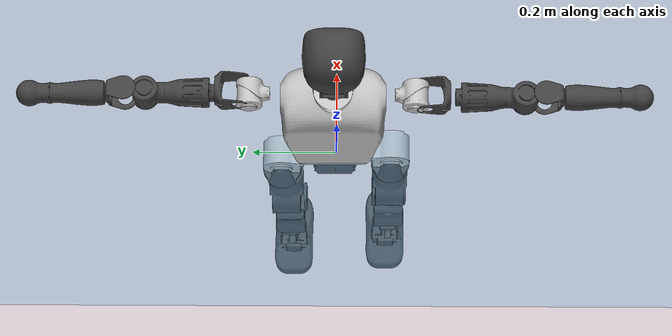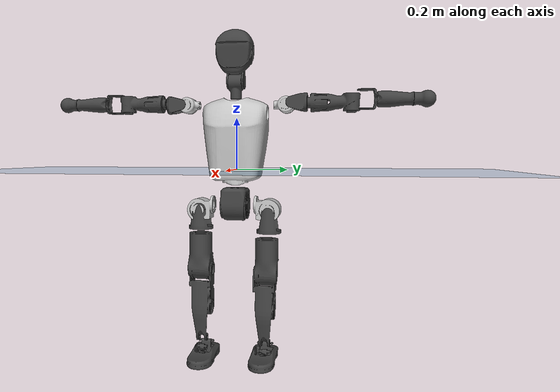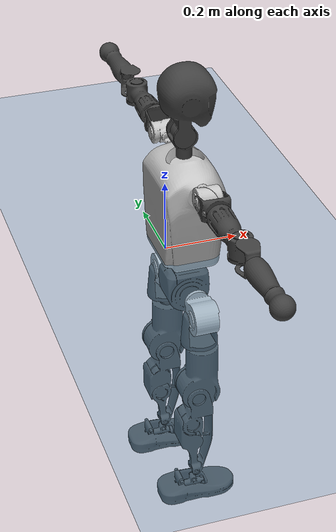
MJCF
<mujoco model="T1">
  <compiler angle="radian" assetdir="assets" balanceinertia="true" inertiafromgeom="false"/>

  <option timestep="0.005" density="1.2" viscosity="2e-05"/>

  <size nkey="1"/>

  <visual>
    <quality shadowsize="8192"/>
    <map shadowclip="0.5"/>
  </visual>

  <default>
    <default class="/">
      <joint armature="0.01" damping="0.01" frictionloss="0.1"/>
      <geom contype="0" conaffinity="0" group="1" solref="-1000 -80"/>
      <site size="0.01 0.005 0.005" group="5"/>
      <general forcelimited="true" biastype="affine" gainprm="25" biasprm="0 -25 -0.6"/>
      <default class="t1">
        <geom rgba="0.25 0.25 0.25 1"/>
        <default class="visual">
          <geom type="mesh" group="2"/>
        </default>
        <default class="collision">
          <geom group="3"/>
        </default>
        <default class="foot">
          <geom size="0.1115 0.05 0.015" type="box" condim="6" group="4" priority="1" solimp="0.015 1 0.015"/>
        </default>
        <default class="reward_collision_sphere">
          <geom group="5" rgba="1 0 0 1"/>
        </default>
      </default>
    </default>
  </default>

  <asset>
    <texture type="skybox" colorspace="auto" name="//unnamed_texture_0" builtin="gradient" rgb1="0.95 0.95 0.95" rgb2="0.95 0.95 0.95" width="100" height="600"/>
    <texture type="2d" colorspace="auto" name="texplane" builtin="checker" rgb1="0.345 0.575 0.748" rgb2="0.345 0.575 0.748" markrgb="1 1 1" width="512" height="512"/>
    <material name="MatPlane" class="/" texture="texplane" texuniform="true" texrepeat="2 2" specular="0.9"/>
    <mesh name="Trunk" class="/" file="Trunk.stl"/>
    <mesh name="H1" class="/" file="H1.stl"/>
    <mesh name="H2" class="/" file="H2.stl"/>
    <mesh name="AL1" class="/" file="AL1.stl"/>
    <mesh name="AL2" class="/" file="AL2.stl"/>
    <mesh name="AL3" class="/" file="AL3.stl"/>
    <mesh name="left_hand_link" class="/" file="left_hand_link.stl"/>
    <mesh name="AR1" class="/" file="AR1.stl"/>
    <mesh name="AR2" class="/" file="AR2.stl"/>
    <mesh name="AR3" class="/" file="AR3.stl"/>
    <mesh name="right_hand_link" class="/" file="right_hand_link.stl"/>
    <mesh name="Waist" class="/" file="Waist.stl"/>
    <mesh name="Hip_Pitch_Left" class="/" file="Hip_Pitch_Left.stl"/>
    <mesh name="Hip_Roll_Left" class="/" file="Hip_Roll_Left.stl"/>
    <mesh name="Hip_Yaw_Left" class="/" file="Hip_Yaw_Left.stl"/>
    <mesh name="Shank_Left" class="/" file="Shank_Left.stl"/>
    <mesh name="Ankle_Cross_Left" class="/" file="Ankle_Cross_Left.stl"/>
    <mesh name="left_foot_link" class="/" file="left_foot_link.stl"/>
    <mesh name="Hip_Pitch_Right" class="/" file="Hip_Pitch_Right.stl"/>
    <mesh name="Hip_Roll_Right" class="/" file="Hip_Roll_Right.stl"/>
    <mesh name="Hip_Yaw_Right" class="/" file="Hip_Yaw_Right.stl"/>
    <mesh name="Shank_Right" class="/" file="Shank_Right.stl"/>
    <mesh name="Ankle_Cross_Right" class="/" file="Ankle_Cross_Right.stl"/>
    <mesh name="right_foot_link" class="/" file="right_foot_link.stl"/>
  </asset>

  <worldbody>
    <geom name="floor" class="/" size="100 100 0.125" type="plane" group="0" material="MatPlane"/>
    <light name="toplight_shadow" class="/" pos="0 0 5" dir="0.0990148 0.0990148 -0.990148" type="directional" ambient="0.04 0.04 0.04" diffuse="0.55 0.55 0.55" specular="0.12 0.12 0.12"/>
    <light name="toplight_fill" class="/" pos="0 0 5" dir="0.0990148 0.0990148 -0.990148" type="directional" castshadow="false" ambient="0.04 0.04 0.04" diffuse="0.3 0.3 0.3" specular="0.08 0.08 0.08"/>
    <body name="trunk" childclass="t1" pos="0.00299808 0.0074863 -0.0043707" quat="0.999997 -0.00232424 -0.000136233 0.000719755">
      <inertial pos="0.0479004 0.00137808 0.116491" quat="0.999954 0.000771617 -0.00958483 0.000138236" mass="17.323" diaginertia="0.0468289 0.261021 0.104831"/>
      <joint name="//unnamed_joint_0" type="free" armature="0" damping="0" frictionloss="0"/>
      <geom name="//unnamed_geom_1" class="visual" rgba="0.76 0.76 0.76 1" mesh="Trunk"/>
      <geom name="//unnamed_geom_2" class="collision" size="0.0836916 0.111589 0.167383" pos="0.0531517 0 0.136785" type="box"/>
      <geom name="//unnamed_geom_3" class="reward_collision_sphere" size="0.128327" pos="0.0531517 0 0.113987"/>
      <geom name="//unnamed_geom_4" class="reward_collision_sphere" size="0.0167383" pos="0.0531517 0.112364 0"/>
      <geom name="//unnamed_geom_5" class="reward_collision_sphere" size="0.0167383" pos="0.0531517 -0.112364 0"/>
      <geom name="//unnamed_geom_6" class="reward_collision_sphere" size="0.0167383" pos="0.0531517 0.141446 0.205177"/>
      <geom name="//unnamed_geom_7" class="reward_collision_sphere" size="0.0167383" pos="0.0531517 -0.141446 0.205177"/>
      <site name="imu" pos="0.0272639 0.0446855 0.00862927" size="0.0111589"/>
      <camera name="track" pos="0 -2.64386 0" quat="0.707107 0.707107 0 0" mode="trackcom"/>
      <camera name="ego_camera" pos="0.108075 0 0.478747" quat="-0.5 -0.5 0.5 0.5"/>
      <body name="H1" pos="0.0518357 -0.00167538 0.274385" quat="0.999998 -0.000317878 0.00209105 0.000291508">
        <inertial pos="-0.00489981 -0.00112887 0.0604047" quat="0.772347 -0.0673288 0.00169956 0.631621" mass="0.601175" diaginertia="0.000131251 0.000826702 0.000304128"/>
        <joint name="AAHead_yaw" pos="0 0 0" axis="-0.00719966 -0.0444107 0.998987" range="-1.45702 1.58329" armature="0.00833343" damping="0.00186394" frictionloss="0.146543"/>
        <geom name="//unnamed_geom_8" class="visual" mesh="H1"/>
        <body name="H2" pos="-0.00836231 -0.000830171 0.0687582" quat="1 0.00012449 0.000492883 0.000352836">
          <inertial pos="0.00712239 0.0117293 0.111149" quat="0.988456 0.106798 -0.0743006 -0.0776476" mass="0.95315" diaginertia="0.00123419 0.00965529 0.00353615"/>
          <joint name="Head_pitch" pos="0 0 0" axis="-0.0282069 -0.999344 0.0227152" stiffness="0.0150205" range="-1.23096 0.271916" armature="0.0112393" damping="0.00443997" frictionloss="0.125918"/>
          <geom name="//unnamed_geom_9" class="visual" mesh="H2"/>
          <geom name="//unnamed_geom_10" class="collision" size="0.089271" pos="0.00885862 0 0.125386"/>
          <geom name="//unnamed_geom_11" class="reward_collision_sphere" size="0.10043" pos="0.0177172 0 0.113987"/>
        </body>
      </body>
      <body name="AL1" pos="0.0567872 0.145032 0.250131" quat="1 -0.000126338 0.000147144 0.000545805">
        <inertial pos="4.12325e-05 0.0578473 0.0102116" quat="0.462615 0.513635 -0.510221 0.511704" mass="0.629972" diaginertia="0.000620678 0.00437013 0.000477944"/>
        <joint name="Left_Shoulder_Pitch" pos="0 0 0" axis="-0.0419304 0.999108 -0.00503293" range="-3.29462 1.28193" armature="0.0117525" damping="0" frictionloss="0.115168"/>
        <geom name="//unnamed_geom_12" class="visual" rgba="0.76 0.76 0.76 1" mesh="AL1"/>
        <body name="AL2" pos="0.00402338 0.0690829 0.0079" quat="0.999982 -0.000808752 0.00273129 -0.00528926">
          <inertial pos="0.00752967 0.061548 0.000667011" quat="0.487834 0.511713 -0.487201 0.512643" mass="0.229203" diaginertia="0.000214709 0.00149837 0.000349043"/>
          <joint name="Left_Shoulder_Roll" pos="0 0 0" axis="-0.998282 -0.05819 -0.00690848" stiffness="0.0512044" range="-1.76093 1.77127" armature="0.0129569" damping="0.0620365" frictionloss="0.0610579"/>
          <geom name="//unnamed_geom_13" class="visual" mesh="AL2"/>
          <body name="AL3" pos="-0.00550258 0.068928 -0.00104839" quat="0.999988 0.000522495 0.000383518 0.00482478">
            <inertial pos="-0.000119605 0.120863 0.00195808" quat="0.709236 0.70459 -0.0181167 -0.0144521" mass="1.27364" diaginertia="0.00754745 0.0487063 0.0014274"/>
            <joint name="Left_Elbow_Pitch" pos="0 0 0" axis="-0.0102302 -0.999289 0.0362914" stiffness="0.0375372" range="-2.50022 2.47933" armature="0.0054255" damping="0.0528992" frictionloss="0.0730669"/>
            <geom name="//unnamed_geom_14" class="visual" mesh="AL3"/>
            <geom name="//unnamed_geom_15" class="collision" size="0.0334766 0.0836916" pos="0 0.0660964 0" quat="0.707105 0.707108 0 0" type="cylinder"/>
            <geom name="//unnamed_geom_16" class="reward_collision_sphere" size="0.040172"/>
            <body name="left_hand_link" pos="-0.00367441 0.193903 0.00997462" quat="0.999996 -0.00122651 -0.000976618 0.00251682">
              <inertial pos="-0.000100039 0.147035 0.00799611" quat="0.710092 0.704104 -0.0025241 6.75525e-05" mass="0.426164" diaginertia="0.00422014 0.0324663 0.00040842"/>
              <joint name="Left_Elbow_Yaw" pos="0 0 0" axis="0.0174299 -0.018823 0.999671" range="-2.45059 0.0397955" armature="0.0117853" damping="0.0206832" frictionloss="0.0843918"/>
              <geom name="//unnamed_geom_17" class="visual" mesh="left_hand_link"/>
              <geom name="//unnamed_geom_18" class="collision" size="0.0334766 0.0976402" pos="0 0.171851 0" quat="0.707105 0.707108 0 0" type="cylinder"/>
              <geom name="//unnamed_geom_19" class="reward_collision_sphere" size="0.0557944"/>
              <geom name="//unnamed_geom_20" class="reward_collision_sphere" size="0.0390561" pos="0 0.145412 0"/>
              <geom name="//unnamed_geom_21" class="reward_collision_sphere" size="0.0390561" pos="0 0.284214 0"/>
            </body>
          </body>
        </body>
      </body>
      <body name="AR1" pos="0.0521794 -0.142626 0.251571" quat="0.999998 0.00102034 0.000841174 -0.00134731">
        <inertial pos="0.00160223 -0.0503851 -0.00940706" quat="0.511183 0.491719 -0.504428 0.492399" mass="0.734839" diaginertia="0.000807908 0.00514772 0.000511644"/>
        <joint name="Right_Shoulder_Pitch" pos="0 0 0" axis="-0.000327704 -1 -0.000184424" range="-1.19539 3.30537" armature="0.0139222" damping="0.00276256" frictionloss="0.109246"/>
        <geom name="//unnamed_geom_22" class="visual" rgba="0.76 0.76 0.76 1" mesh="AR1"/>
        <body name="AR2" pos="-0.00115677 -0.0701873 0.00218292" quat="0.999999 -0.000717525 -0.000489558 -0.000535317">
          <inertial pos="0.00579004 -0.0498122 0.0101878" quat="0.510452 0.50435 -0.495638 0.489299" mass="0.207074" diaginertia="0.00023135 0.00154179 0.000369081"/>
          <joint name="Right_Shoulder_Roll" pos="0 0 0" axis="-0.999743 0.0173635 0.0145862" range="-1.70588 1.39468" armature="0.0116229" damping="0.0492444" frictionloss="0.114328"/>
          <geom name="//unnamed_geom_23" class="visual" mesh="AR2"/>
          <body name="AR3" pos="-0.00666885 -0.0804542 0.00537469" quat="1 -0.000185548 -7.05584e-05 -0.000618475">
            <inertial pos="-0.00232919 -0.108316 -0.000210673" quat="0.711506 0.702667 0.00118302 0.00407681" mass="1.40432" diaginertia="0.0067234 0.0462445 0.00109617"/>
            <joint name="Right_Elbow_Pitch" pos="0 0 0" axis="0.000868583 0.99993 0.0118241" stiffness="0.0264879" range="-2.2855 2.25694" armature="0.00578546" damping="0.00191988" frictionloss="0.163332"/>
            <geom name="//unnamed_geom_24" class="visual" mesh="AR3"/>
            <geom name="//unnamed_geom_25" class="collision" size="0.0334766 0.0836916" pos="0 -0.0660964 0" quat="0.707105 0.707108 0 0" type="cylinder"/>
            <geom name="//unnamed_geom_26" class="reward_collision_sphere" size="0.040172"/>
            <body name="right_hand_link" pos="0.000622681 -0.192593 0.000616972" quat="0.999997 -0.00048788 -0.000823568 0.00225444">
              <inertial pos="0.00120784 -0.146307 0.0116782" quat="0.715088 0.697163 0.0400307 0.0317714" mass="0.389746" diaginertia="0.00500719 0.0328698 0.000390864"/>
              <joint name="Right_Elbow_Yaw" pos="0 0 0" axis="-0.0232651 0.00510067 0.999716" stiffness="0.0436805" range="0.188733 2.22866" armature="0.0115941" damping="0.0107233" frictionloss="0.104255"/>
              <geom name="//unnamed_geom_27" class="visual" mesh="right_hand_link"/>
              <geom name="//unnamed_geom_28" class="collision" size="0.0334766 0.0976402" pos="0 -0.171851 0" quat="0.707105 0.707108 0 0" type="cylinder"/>
              <geom name="//unnamed_geom_29" class="reward_collision_sphere" size="0.0557944"/>
              <geom name="//unnamed_geom_30" class="reward_collision_sphere" size="0.0390561" pos="0 -0.145412 0"/>
              <geom name="//unnamed_geom_31" class="reward_collision_sphere" size="0.0390561" pos="0 -0.284214 0"/>
            </body>
          </body>
        </body>
      </body>
      <body name="Waist" pos="0.0513015 -0.00256752 -0.131138" quat="0.999999 -0.000844373 0.000548176 0.000869846">
        <inertial pos="0.00296272 0.00153434 0.00418275" quat="0.982676 -0.0173157 -0.1843 -0.00902675" mass="3.81471" diaginertia="0.00319164 0.020978 0.00895055"/>
        <joint name="Waist" pos="0 0 0" axis="0.00609176 -0.0432891 0.999044" stiffness="0.0582072" range="-1.56726 1.53948" armature="0.00971424" damping="0" frictionloss="0.15686"/>
        <geom name="//unnamed_geom_32" class="visual" mesh="Waist"/>
        <body name="Hip_Pitch_Left" pos="-0.00704433 0.131195 0.00260281" quat="0.999999 0.000325898 0.000677369 -0.00114057">
          <inertial pos="-0.00962501 -0.0134229 -0.0118393" quat="0.974405 0.217178 0.0338438 -0.0471517" mass="1.30295" diaginertia="0.000997848 0.00597514 0.00231306"/>
          <joint name="Left_Hip_Pitch" pos="0 0 0" axis="0.0141371 0.999843 0.0106425" range="-1.83139 1.38616" armature="0.0104177" damping="0.0444293" frictionloss="0.11097"/>
          <geom name="//unnamed_geom_33" class="visual" rgba="0.76 0.76 0.76 1" mesh="Hip_Pitch_Left"/>
          <body name="Hip_Roll_Left" pos="-0.00401615 -0.000504221 -0.0318379" quat="1 0.000462601 1.60585e-05 0.000564728">
            <inertial pos="0.00681112 -0.00765886 -0.0629203" quat="0.725815 -0.0135107 0.00915009 0.687696" mass="0.601699" diaginertia="0.000947844 0.00767618 0.00113143"/>
            <joint name="Left_Hip_Roll" pos="0 0 0" axis="-0.999877 -0.00122069 0.0156517" range="-1.60611 0.13141" armature="0.0121811" damping="0.00902958" frictionloss="0.146988"/>
            <geom name="//unnamed_geom_34" class="visual" mesh="Hip_Roll_Left"/>
            <geom name="//unnamed_geom_35" class="reward_collision_sphere" size="0.0613738"/>
            <body name="Hip_Yaw_Left" pos="0.00282845 -0.00695745 -0.100165" quat="0.999999 0.000903698 -0.00106 8.77647e-05">
              <inertial pos="-0.00587206 -0.00158456 -0.102466" quat="0.72322 -0.0541016 -0.00492826 0.688478" mass="3.45192" diaginertia="0.0146937 0.107488 0.00539475"/>
              <joint name="Left_Hip_Yaw" pos="0 0 0" axis="-0.0473059 -0.000361579 -0.99888" range="-1.08971 1.14715" armature="0.0105213" damping="0" frictionloss="0.121293"/>
              <geom name="//unnamed_geom_36" class="visual" mesh="Hip_Yaw_Left"/>
              <geom name="//unnamed_geom_37" class="collision" size="0.0557944 0.089271" type="cylinder"/>
              <body name="Shank_Left" pos="-0.0194208 -0.00890535 -0.144255" quat="0.999999 0.000672817 0.000438376 0.000762764">
                <inertial pos="-0.00555392 0.0109401 -0.142525" quat="0.997768 0.00289931 -0.0217275 0.0630783" mass="2.34575" diaginertia="0.0159602 0.139122 0.00302454"/>
                <joint name="Left_Knee_Pitch" pos="0 0 0" axis="0.0113013 0.999789 -0.0171244" range="-0.087265 2.33416" armature="0.0100599" damping="0" frictionloss="0.0446723"/>
                <geom name="//unnamed_geom_38" class="visual" mesh="Shank_Left"/>
                <geom name="//unnamed_geom_39" class="collision" size="0.0557944 0.0836916" pos="0 0 -0.136785" type="cylinder"/>
                <geom name="//unnamed_geom_40" class="reward_collision_sphere" size="0.0725327"/>
                <body name="Ankle_Cross_Left" pos="-0.00209344 -0.000236729 -0.313608" quat="1 -0.000384765 1.47347e-05 -0.000634313">
                  <inertial pos="-0.00454414 -0.00115734 -0.0139877" quat="0.443059 0.550828 0.551241 0.443194" mass="0.12511" diaginertia="1.64841e-05 0.000134768 2.47591e-05"/>
                  <joint name="Left_Ankle_Pitch" pos="0 0 0" axis="-0.0047539 0.998537 0.0538694" stiffness="0.0507492" range="-0.823306 0.365331" armature="0.0107954" damping="0" frictionloss="0.132587"/>
                  <geom name="//unnamed_geom_41" class="visual" mesh="Ankle_Cross_Left"/>
                  <body name="left_foot_link" pos="-0.00259284 -0.00443378 -0.0134148" quat="0.999985 -0.00196357 -0.00188913 -0.00466009">
                    <inertial pos="-0.00988509 0.00205669 -0.00751772" quat="0.0254632 0.607052 -0.0231513 0.793916" mass="0.893614" diaginertia="0.00142713 0.00924243 0.00437178"/>
                    <joint name="Left_Ankle_Roll" pos="0 0 0" axis="-1 0.000411962 -0.000481112" range="-0.482499 0.530655" armature="0.0114897" damping="0.037741" frictionloss="0.097455"/>
                    <geom name="//unnamed_geom_42" class="visual" mesh="left_foot_link"/>
                    <geom name="left_foot" class="foot" size="0.0920238 0.0613936 0.0241796" pos="0.00885862 0 -0.0170981"/>
                    <geom name="//unnamed_geom_44" class="reward_collision_sphere" size="0.0580262" pos="0.00885862 0 -0.0170981"/>
                    <geom name="//unnamed_geom_45" class="reward_collision_sphere" size="0.0334766" pos="0.0841569 -0.0304043 -0.0170981"/>
                    <geom name="//unnamed_geom_46" class="reward_collision_sphere" size="0.0334766" pos="-0.0620103 -0.0304043 -0.0170981"/>
                    <site name="left_foot" class="foot" pos="0.00885862 0 -0.0170981" size="0.0111589"/>
                  </body>
                </body>
              </body>
            </body>
          </body>
        </body>
        <body name="Hip_Pitch_Right" pos="0.00742974 -0.13818 0.000916907" quat="0.999996 -0.000268304 -0.00202926 -0.00216973">
          <inertial pos="0.00535139 0.0115381 -0.0282521" quat="0.974676 -0.223239 0.0105007 -0.0078607" mass="1.34949" diaginertia="0.000923345 0.00536073 0.00222932"/>
          <joint name="Right_Hip_Pitch" pos="0 0 0" axis="8.04761e-05 -1 9.14216e-05" stiffness="0.00309466" range="-1.58437 1.75934" armature="0.0103297" damping="0.0350576" frictionloss="0.0753165"/>
          <geom name="//unnamed_geom_47" class="visual" rgba="0.76 0.76 0.76 1" mesh="Hip_Pitch_Right"/>
          <body name="Hip_Roll_Right" pos="-0.00838235 0.00165215 -0.0194286" quat="1 -4.46197e-06 0.000116173 0.000404599">
            <inertial pos="0.00968814 0.00435112 -0.0539759" quat="0.702419 -0.0257973 -0.00773832 0.711254" mass="0.467778" diaginertia="0.000943873 0.00601344 0.0010047"/>
            <joint name="Right_Hip_Roll" pos="0 0 0" axis="-0.999949 0.00638228 -0.0077956" range="-0.10051 1.56451" armature="0.00852031" damping="0" frictionloss="0.135285"/>
            <geom name="//unnamed_geom_48" class="visual" mesh="Hip_Roll_Right"/>
            <geom name="//unnamed_geom_49" class="reward_collision_sphere" size="0.0613738"/>
            <body name="Hip_Yaw_Right" pos="0.00518037 -4.74831e-05 -0.0934808" quat="1 -0.000161051 -0.000886003 0.000208942">
              <inertial pos="-0.00662592 0.00859229 -0.111979" quat="0.714377 -0.031883 -0.0338136 0.698216" mass="2.62789" diaginertia="0.0135349 0.0821245 0.00485896"/>
              <joint name="Right_Hip_Yaw" pos="0 0 0" axis="0.00467244 -0.0089314 -0.999949" range="-1.03361 1.02153" armature="0.0171229" damping="0.025259" frictionloss="0.112031"/>
              <geom name="//unnamed_geom_50" class="visual" mesh="Hip_Yaw_Right"/>
              <geom name="//unnamed_geom_51" class="collision" size="0.0557944 0.089271" type="cylinder"/>
              <body name="Shank_Right" pos="-0.0220141 0.00147431 -0.150148" quat="1 0.000246123 0.000230366 -0.000111384">
                <inertial pos="-0.016042 -0.0120324 -0.142055" quat="0.997888 -0.0191706 -0.0508853 -0.0355321" mass="2.14561" diaginertia="0.0141431 0.126004 0.00346797"/>
                <joint name="Right_Knee_Pitch" pos="0 0 0" axis="0.015357 -0.998773 0.0470908" stiffness="0.00595082" range="-2.33151 0.0108544" armature="0.0105895" damping="0.00163905" frictionloss="0.0904527"/>
                <geom name="//unnamed_geom_52" class="visual" mesh="Shank_Right"/>
                <geom name="//unnamed_geom_53" class="collision" size="0.0557944 0.0836916" pos="0 0 -0.136785" type="cylinder"/>
                <geom name="//unnamed_geom_54" class="reward_collision_sphere" size="0.0725327"/>
                <body name="Ankle_Cross_Right" pos="-0.00461509 -0.00172522 -0.318732" quat="1 0.000260696 -0.00043662 0.000415005">
                  <inertial pos="-0.00570655 -0.00471878 -0.0103889" quat="0.454313 0.545979 0.538102 0.453821" mass="0.110296" diaginertia="1.44817e-05 0.00010553 2.31344e-05"/>
                  <joint name="Right_Ankle_Pitch" pos="0 0 0" axis="0.00458247 -0.998222 0.059423" range="-0.307424 0.90015" armature="0.0106338" damping="0.00290787" frictionloss="0.102046"/>
                  <geom name="//unnamed_geom_55" class="visual" mesh="Ankle_Cross_Right"/>
                  <body name="right_foot_link" pos="0.00228062 0.00770903 -0.0209332" quat="1 0.000212944 -0.000827919 0.00010736">
                    <inertial pos="-0.0107846 -0.00169572 -0.0159989" quat="0.00236074 0.61846 0.0349522 0.785035" mass="0.962338" diaginertia="0.00125265 0.00939725 0.00439626"/>
                    <joint name="Right_Ankle_Roll" pos="0 0 0" axis="-0.999258 0.000931158 0.0384982" range="-0.449244 0.491144" armature="0.00964125" damping="0" frictionloss="0.165807"/>
                    <geom name="//unnamed_geom_56" class="visual" mesh="right_foot_link"/>
                    <geom name="right_foot" class="foot" size="0.09476 0.0577717 0.0201165" pos="0.00885862 0 -0.0170981"/>
                    <geom name="//unnamed_geom_58" class="reward_collision_sphere" size="0.0446355"/>
                    <geom name="//unnamed_geom_59" class="reward_collision_sphere" size="0.0334766" pos="0.00885862 0 -0.0170981"/>
                    <geom name="//unnamed_geom_60" class="reward_collision_sphere" size="0.0334766" pos="0.0841569 0.0304043 -0.0170981"/>
                    <geom name="//unnamed_geom_61" class="reward_collision_sphere" size="0.0334766" pos="-0.0620103 0.0304043 -0.0170981"/>
                    <site name="right_foot" class="foot" pos="0.00885862 0 -0.0170981" size="0.0111589"/>
                  </body>
                </body>
              </body>
            </body>
          </body>
        </body>
      </body>
    </body>
  </worldbody>

  <contact>
    <pair class="/" geom1="floor" geom2="left_foot" name="//unnamed_contact_0"/>
    <pair class="/" geom1="floor" geom2="right_foot" name="//unnamed_contact_1"/>
  </contact>

  <actuator>
    <general name="AAHead_yaw" class="/" joint="AAHead_yaw" forcerange="-10.3934 10.3934" gainprm="28.269" biasprm="0 -28.269 -0.708472"/>
    <general name="Head_pitch" class="/" joint="Head_pitch" forcerange="-7.08317 7.08317" gainprm="28.269" biasprm="0 -28.269 -0.708472"/>
    <general name="Left_Shoulder_Pitch" class="/" joint="Left_Shoulder_Pitch" forcerange="-21.1428 21.1428" gainprm="28.269" biasprm="0 -28.269 -0.708472"/>
    <general name="Left_Shoulder_Roll" class="/" joint="Left_Shoulder_Roll" forcerange="-17.6124 17.6124" gainprm="28.269" biasprm="0 -28.269 -0.708472"/>
    <general name="Left_Elbow_Pitch" class="/" joint="Left_Elbow_Pitch" forcerange="-14.6796 14.6796" gainprm="28.269" biasprm="0 -28.269 -0.708472"/>
    <general name="Left_Elbow_Yaw" class="/" joint="Left_Elbow_Yaw" forcerange="-11.9426 11.9426" gainprm="28.269" biasprm="0 -28.269 -0.708472"/>
    <general name="Right_Shoulder_Pitch" class="/" joint="Right_Shoulder_Pitch" forcerange="-20.5428 20.5428" gainprm="28.269" biasprm="0 -28.269 -0.708472"/>
    <general name="Right_Shoulder_Roll" class="/" joint="Right_Shoulder_Roll" forcerange="-14.6199 14.6199" gainprm="28.269" biasprm="0 -28.269 -0.708472"/>
    <general name="Right_Elbow_Pitch" class="/" joint="Right_Elbow_Pitch" forcerange="-16.1791 16.1791" gainprm="28.269" biasprm="0 -28.269 -0.708472"/>
    <general name="Right_Elbow_Yaw" class="/" joint="Right_Elbow_Yaw" forcerange="-25.0769 25.0769" gainprm="28.269" biasprm="0 -28.269 -0.708472"/>
    <general name="Waist" class="/" joint="Waist" forcerange="-33.5612 33.5612" gainprm="28.269" biasprm="0 -28.269 -0.708472"/>
    <general name="Left_Hip_Pitch" class="/" joint="Left_Hip_Pitch" forcerange="-41.0029 41.0029" gainprm="28.269" biasprm="0 -28.269 -0.708472"/>
    <general name="Left_Hip_Roll" class="/" joint="Left_Hip_Roll" forcerange="-32.9552 32.9552" gainprm="28.269" biasprm="0 -28.269 -0.708472"/>
    <general name="Left_Hip_Yaw" class="/" joint="Left_Hip_Yaw" forcerange="-31.2623 31.2623" gainprm="28.269" biasprm="0 -28.269 -0.708472"/>
    <general name="Left_Knee_Pitch" class="/" joint="Left_Knee_Pitch" forcerange="-67.9419 67.9419" gainprm="28.269" biasprm="0 -28.269 -0.708472"/>
    <general name="Left_Ankle_Pitch" class="/" joint="Left_Ankle_Pitch" forcerange="-21.368 21.368" gainprm="28.269" biasprm="0 -28.269 -0.708472"/>
    <general name="Left_Ankle_Roll" class="/" joint="Left_Ankle_Roll" forcerange="-16.7876 16.7876" gainprm="28.269" biasprm="0 -28.269 -0.708472"/>
    <general name="Right_Hip_Pitch" class="/" joint="Right_Hip_Pitch" forcerange="-47.4087 47.4087" gainprm="28.269" biasprm="0 -28.269 -0.708472"/>
    <general name="Right_Hip_Roll" class="/" joint="Right_Hip_Roll" forcerange="-34.1985 34.1985" gainprm="28.269" biasprm="0 -28.269 -0.708472"/>
    <general name="Right_Hip_Yaw" class="/" joint="Right_Hip_Yaw" forcerange="-36.1417 36.1417" gainprm="28.269" biasprm="0 -28.269 -0.708472"/>
    <general name="Right_Knee_Pitch" class="/" joint="Right_Knee_Pitch" forcerange="-76.7275 76.7275" gainprm="28.269" biasprm="0 -28.269 -0.708472"/>
    <general name="Right_Ankle_Pitch" class="/" joint="Right_Ankle_Pitch" forcerange="-28.2815 28.2815" gainprm="28.269" biasprm="0 -28.269 -0.708472"/>
    <general name="Right_Ankle_Roll" class="/" joint="Right_Ankle_Roll" forcerange="-13.5622 13.5622" gainprm="28.269" biasprm="0 -28.269 -0.708472"/>
  </actuator>

  <sensor>
    <gyro site="imu" name="imu_angular_velocity"/>
    <velocimeter site="imu" name="imu_linear_velocity"/>
    <framelinvel objtype="site" objname="left_foot" name="left_foot_global_linear_velocity"/>
    <framelinvel objtype="site" objname="right_foot" name="right_foot_global_linear_velocity"/>
  </sensor>

  <keyframe>
    <key name="home" qpos="0 0 0.6385 1 0 0 0 0 0 0 1.4 0 -0.4 0 -1.4 0 0.4 0 -0.4 0 0 0.8 -0.4 0 0.4 0 0 -0.8 0.4 0"/>
  </keyframe>
</mujoco>
